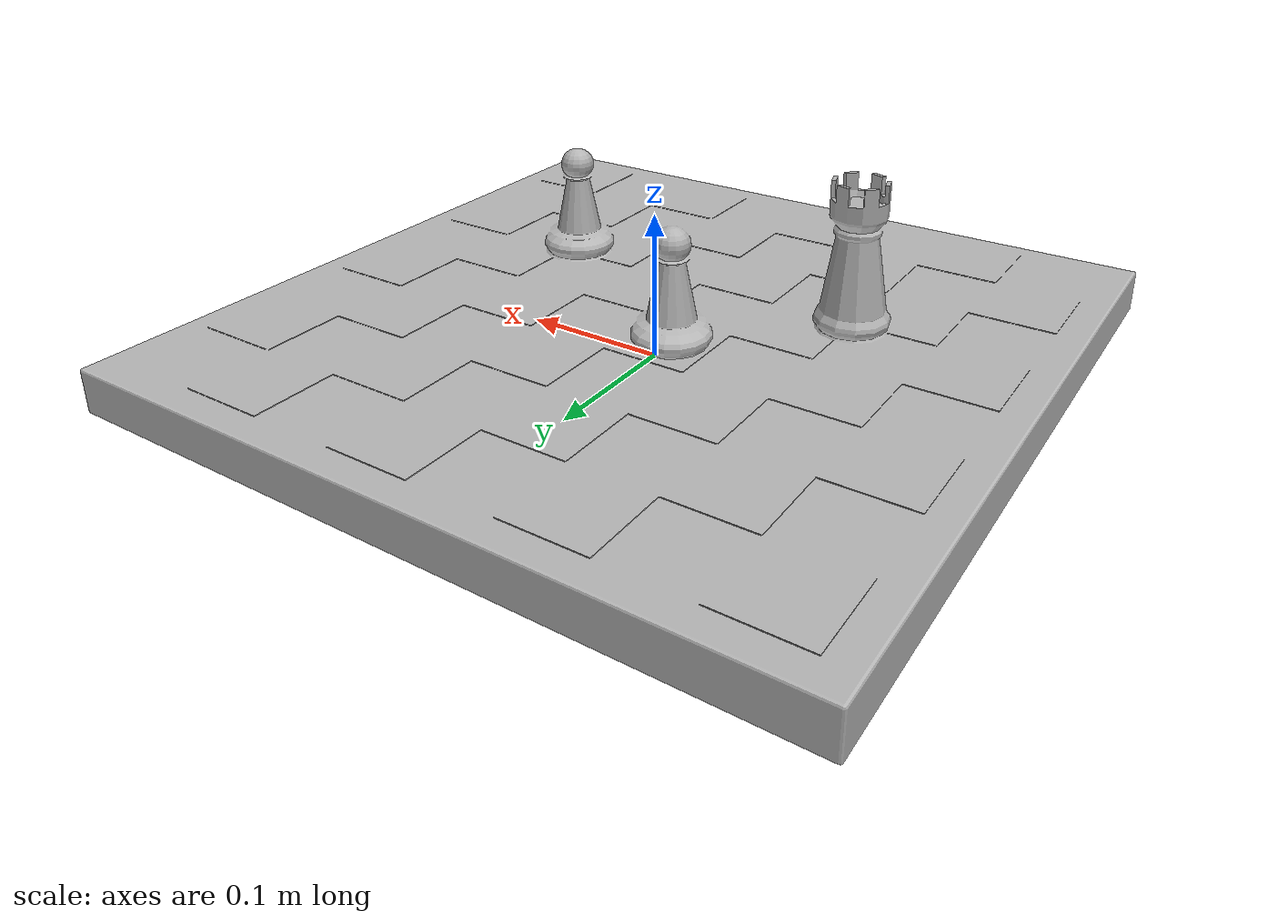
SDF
<?xml version='1.0'?>
<sdf version='1.4'>
  <model name='340'>
    <pose>0 0 0 0 0 0</pose>
    <static>true</static>
    <link name='link'>
      <collision name='collision'>
        <pose>0 0 0 0 0 0</pose>
        <geometry>
          <box>
            <size>0.5 0.5 2</size>
          </box>
        </geometry>
      </collision>
      <visual name='visual'>
        <pose>0 0 0 0 0 0</pose>
        <geometry>
          <mesh><uri>model://340/340.dae</uri></mesh>
        </geometry>
      </visual>
    </link>
  </model>
</sdf>
